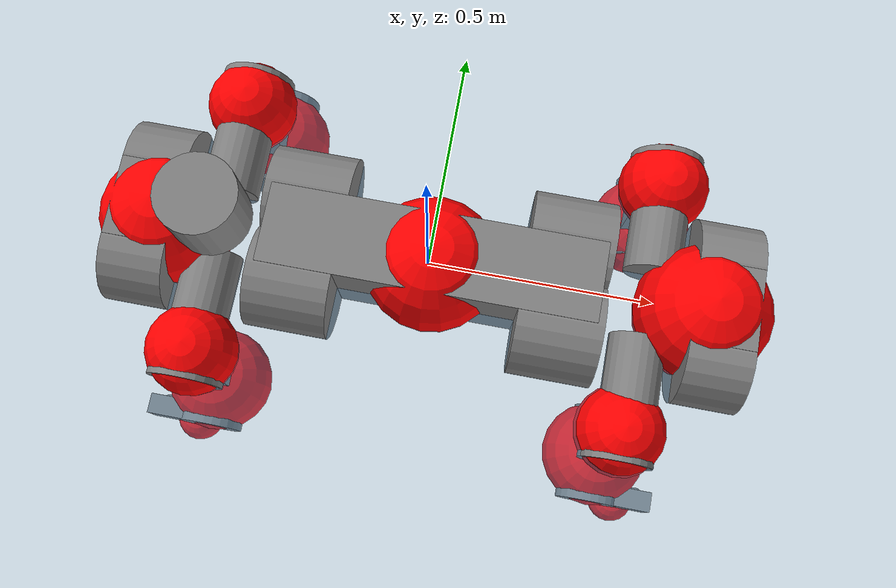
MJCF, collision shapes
<mujoco model="anymal_c">
  <compiler angle="radian" assetdir="assets" balanceinertia="true" inertiafromgeom="false"/>

  <option timestep="0.005" density="1.2" viscosity="2e-05"/>

  <size nkey="1"/>

  <visual>
    <quality shadowsize="8192"/>
    <map shadowclip="0.5"/>
  </visual>

  <default>
    <default class="/">
      <material specular="0" shininess="0.25"/>
      <geom contype="0" conaffinity="0" group="1" solref="-1000 -80"/>
      <site size="0.01 0.005 0.005" group="5"/>
      <general forcelimited="true" forcerange="-80 80" biastype="affine" gainprm="80" biasprm="0 -80 -2"/>
      <default class="anymal_c">
        <joint armature="0.01" damping="0.01" frictionloss="0.1"/>
        <default class="visual">
          <geom type="mesh" group="2"/>
          <default class="visual_zflip"/>
        </default>
        <default class="collision">
          <geom type="cylinder" group="3"/>
          <default class="foot">
            <geom size="0.03 0 0" type="sphere" condim="6" priority="1" friction="0.8 0.02 0.01" solimp="0.015 1 0.03"/>
          </default>
        </default>
      </default>
      <default class="reward_collision_sphere">
        <geom group="5" rgba="1 0 0 1"/>
      </default>
    </default>
  </default>

  <asset>
    <texture type="skybox" colorspace="auto" name="//unnamed_texture_0" builtin="gradient" rgb1="0.95 0.95 0.95" rgb2="0.95 0.95 0.95" width="100" height="600"/>
    <texture type="2d" colorspace="auto" name="texplane" builtin="checker" rgb1="0.345 0.575 0.748" rgb2="0.345 0.575 0.748" markrgb="1 1 1" width="512" height="512"/>
    <texture type="2d" colorspace="linear" name="base" file="base.png"/>
    <texture type="2d" colorspace="linear" name="top_shell" file="top_shell.png"/>
    <texture type="2d" colorspace="linear" name="bottom_shell" file="bottom_shell.png"/>
    <texture type="2d" colorspace="linear" name="remote" file="remote.png"/>
    <texture type="2d" colorspace="linear" name="hatch" file="hatch.png"/>
    <texture type="2d" colorspace="linear" name="handle" file="handle.png"/>
    <texture type="2d" colorspace="linear" name="face" file="face.png"/>
    <texture type="2d" colorspace="linear" name="battery" file="battery.png"/>
    <texture type="2d" colorspace="linear" name="lidar_cage" file="lidar_cage.png"/>
    <texture type="2d" colorspace="linear" name="depth_camera" file="depth_camera.png"/>
    <texture type="2d" colorspace="linear" name="wide_angle_camera" file="wide_angle_camera.png"/>
    <texture type="2d" colorspace="linear" name="lidar" file="lidar.png"/>
    <texture type="2d" colorspace="linear" name="drive" file="drive.png"/>
    <texture type="2d" colorspace="linear" name="hip_l" file="hip_l.png"/>
    <texture type="2d" colorspace="linear" name="shank_l" file="shank_l.png"/>
    <texture type="2d" colorspace="linear" name="foot" file="foot.png"/>
    <texture type="2d" colorspace="linear" name="thigh" file="thigh.png"/>
    <texture type="2d" colorspace="linear" name="shank_r" file="shank_r.png"/>
    <texture type="2d" colorspace="linear" name="hip_r" file="hip_r.png"/>
    <material name="MatPlane" class="/" texture="texplane" texuniform="true" texrepeat="2 2" specular="0.9" shininess="0.5"/>
    <material name="black_plastic" class="/" rgba="0.007 0.007 0.007 1"/>
    <material name="green" class="/" rgba="0.052 0.178 0.033 1"/>
    <material name="red" class="/" rgba="0.178 0.006 0.005 1"/>
    <material name="yellow" class="/" rgba="0.178 0.119 0.006 1"/>
    <material name="lwl" class="/" rgba="0.8 0.8 0.8 1"/>
    <material name="base" class="/" texture="base"/>
    <material name="top_shell" class="/" texture="top_shell"/>
    <material name="bottom_shell" class="/" texture="bottom_shell"/>
    <material name="hip_l" class="/" texture="hip_l"/>
    <material name="thigh" class="/" texture="thigh"/>
    <material name="shank_l" class="/" texture="shank_l"/>
    <material name="foot" class="/" texture="foot"/>
    <material name="hip_r" class="/" texture="hip_r"/>
    <material name="shank" class="/" texture="shank_r"/>
    <material name="hatch" class="/" texture="hatch"/>
    <material name="remote" class="/" texture="remote"/>
    <material name="handle" class="/" texture="handle"/>
    <material name="face" class="/" texture="face"/>
    <material name="depth_camera" class="/" texture="depth_camera"/>
    <material name="wide_angle_camera" class="/" texture="wide_angle_camera"/>
    <material name="battery" class="/" texture="battery"/>
    <material name="lidar_cage" class="/" texture="lidar_cage"/>
    <material name="lidar" class="/" texture="lidar"/>
    <material name="drive" class="/" texture="drive"/>
    <mesh name="base_0" class="/" file="base_0.obj"/>
    <mesh name="base_1" class="/" file="base_1.obj"/>
    <mesh name="base_2" class="/" file="base_2.obj"/>
    <mesh name="base_3" class="/" file="base_3.obj"/>
    <mesh name="base_4" class="/" file="base_4.obj"/>
    <mesh name="base_5" class="/" file="base_5.obj"/>
    <mesh name="top_shell" class="/" file="top_shell.obj"/>
    <mesh name="bottom_shell" class="/" file="bottom_shell.obj"/>
    <mesh name="remote" class="/" file="remote.obj"/>
    <mesh name="handle" class="/" file="handle.obj"/>
    <mesh name="face" class="/" file="face.obj"/>
    <mesh name="wide_angle_camera" class="/" file="wide_angle_camera.obj"/>
    <mesh name="depth_camera" class="/" file="depth_camera.obj"/>
    <mesh name="battery" class="/" file="battery.obj"/>
    <mesh name="lidar_cage" class="/" file="lidar_cage.obj"/>
    <mesh name="lidar" class="/" file="lidar.obj"/>
    <mesh name="drive" class="/" file="drive.obj"/>
    <mesh name="hip_l" class="/" file="hip_l.obj"/>
    <mesh name="thigh" class="/" file="thigh.obj"/>
    <mesh name="shank_l" class="/" file="shank_l.obj"/>
    <mesh name="foot" class="/" file="foot.obj"/>
    <mesh name="hip_r" class="/" file="hip_r.obj"/>
    <mesh name="hatch" class="/" file="hatch.obj"/>
    <mesh name="shank_r" class="/" file="shank_r.obj"/>
  </asset>

  <worldbody>
    <geom name="floor" class="/" size="100 100 0.125" type="plane" group="0" material="MatPlane"/>
    <light name="toplight_shadow" class="/" pos="0 0 5" dir="0.0990148 0.0990148 -0.990148" type="directional" ambient="0.04 0.04 0.04" diffuse="0.55 0.55 0.55" specular="0.12 0.12 0.12"/>
    <light name="toplight_fill" class="/" pos="0 0 5" dir="0.0990148 0.0990148 -0.990148" type="directional" castshadow="false" ambient="0.04 0.04 0.04" diffuse="0.3 0.3 0.3" specular="0.08 0.08 0.08"/>
    <body name="trunk" childclass="anymal_c" pos="0.0103736 -0.00258757 0.00777722" quat="0.999989 0.00384757 -0.0011267 -0.00240601">
      <inertial pos="0.0112902 -0.0082739 0.0539452" quat="0.448727 0.512507 0.522854 0.512449" mass="33.5116" diaginertia="1.93381 2.50368 0.267666"/>
      <joint name="//unnamed_joint_0" type="free" armature="0" damping="0" frictionloss="0"/>
      <geom name="//unnamed_geom_1" class="visual" material="green" mesh="base_0"/>
      <geom name="//unnamed_geom_2" class="visual" material="yellow" mesh="base_1"/>
      <geom name="//unnamed_geom_3" class="visual" material="red" mesh="base_2"/>
      <geom name="//unnamed_geom_4" class="visual" material="black_plastic" mesh="base_3"/>
      <geom name="//unnamed_geom_5" class="visual" material="lwl" mesh="base_4"/>
      <geom name="//unnamed_geom_6" class="visual" material="base" mesh="base_5"/>
      <geom name="trunk_1" class="collision" size="0.364819 0.0880598 0.11322" type="box"/>
      <geom name="trunk_2" class="collision" size="0.11322 0.0912048" pos="0.28893 0.093326 0" quat="0.707107 0 0.707107 0"/>
      <geom name="trunk_3" class="collision" size="0.11322 0.0912048" pos="-0.28893 0.093326 0" quat="0.707107 0 0.707107 0"/>
      <geom name="trunk_4" class="collision" size="0.11322 0.0912048" pos="0.28893 -0.093326 0" quat="0.707107 0 0.707107 0"/>
      <geom name="trunk_5" class="collision" size="0.11322 0.0912048" pos="-0.28893 -0.093326 0" quat="0.707107 0 0.707107 0"/>
      <geom name="//unnamed_geom_12" class="visual" material="top_shell" mesh="top_shell"/>
      <geom name="//unnamed_geom_13" class="visual" material="bottom_shell" mesh="bottom_shell"/>
      <geom name="//unnamed_geom_14" class="visual" material="remote" mesh="remote"/>
      <geom name="//unnamed_geom_15" class="visual" material="handle" mesh="handle"/>
      <geom name="//unnamed_geom_16" class="visual" pos="0.550628 0 0" quat="1 0 0 0" material="face" mesh="face"/>
      <geom name="trunk_6" class="collision" size="0.0691898 0.0880598 0.11322" pos="0.623691 0 0" type="box"/>
      <geom name="//unnamed_geom_18" class="collision" size="0.11322 0.0691898" pos="0.623691 0.093326 0" quat="0.707107 0 0.707107 0"/>
      <geom name="//unnamed_geom_19" class="collision" size="0.11322 0.0691898" pos="0.623691 -0.093326 0" quat="0.707107 0 0.707107 0"/>
      <geom name="//unnamed_geom_20" class="visual" pos="0.613254 0 -0.0308384" quat="0.965926 0 0.258819 0" material="depth_camera" mesh="depth_camera"/>
      <geom name="//unnamed_geom_21" class="visual" pos="0.681477 0 0.0166518" material="wide_angle_camera" mesh="wide_angle_camera"/>
      <geom name="//unnamed_geom_22" class="visual_zflip" pos="-0.550628 0 0" quat="0 0 0 1" material="face" mesh="face"/>
      <geom name="trunk_7" class="collision" size="0.0691898 0.0880598 0.11322" pos="-0.623691 0 0" quat="0 0 0 1" type="box"/>
      <geom name="//unnamed_geom_24" class="collision" size="0.11322 0.0691898" pos="-0.623691 -0.093326 0" quat="0 -0.707107 0 0.707107"/>
      <geom name="//unnamed_geom_25" class="collision" size="0.11322 0.0691898" pos="-0.623691 0.093326 0" quat="0 -0.707107 0 0.707107"/>
      <geom name="//unnamed_geom_26" class="visual" pos="-0.613254 0 -0.0308384" quat="0 -0.258819 0 0.965926" material="depth_camera" mesh="depth_camera"/>
      <geom name="//unnamed_geom_27" class="visual_zflip" pos="-0.681477 0 0.0166518" quat="0 0 0 1" material="wide_angle_camera" mesh="wide_angle_camera"/>
      <geom name="//unnamed_geom_28" class="visual" material="battery" mesh="battery"/>
      <geom name="//unnamed_geom_29" class="visual" pos="0 0.101993 0.0339558" quat="0.683013 -0.183013 0.183013 0.683013" material="depth_camera" mesh="depth_camera"/>
      <geom name="//unnamed_geom_30" class="visual" pos="0 -0.101993 0.0339558" quat="0.683013 0.183013 0.183013 -0.683013" material="depth_camera" mesh="depth_camera"/>
      <geom name="//unnamed_geom_31" class="visual" pos="-0.483543 0 0.0817575" quat="1 0 0 0" material="lidar_cage" mesh="lidar_cage"/>
      <geom name="trunk_8" class="collision" size="0.0880598 0.0754798" pos="-0.483543 0 0.148498"/>
      <geom name="//unnamed_geom_33" class="visual" pos="-0.483543 1.89111e-06 0.158176" quat="0.707107 0 0 -0.707107" material="lidar" mesh="lidar"/>
      <geom name="//unnamed_geom_34" class="visual" pos="0.398392 0.138577 3.81023e-09" quat="0.258819 0.965926 0 0" material="drive" mesh="drive"/>
      <geom name="//unnamed_geom_35" class="visual" pos="0.398392 -0.138577 -3.81023e-09" quat="0.258819 -0.965926 0 0" material="drive" mesh="drive"/>
      <geom name="//unnamed_geom_36" class="visual" pos="-0.398392 0.138577 -3.81023e-09" quat="0 0 0.965926 -0.258819" material="drive" mesh="drive"/>
      <geom name="//unnamed_geom_37" class="visual" pos="-0.398392 -0.138577 3.81023e-09" quat="0 0 -0.965926 -0.258819" material="drive" mesh="drive"/>
      <geom name="//unnamed_geom_38" class="visual" pos="0.154096 0 0.0812014" quat="1 0 0 0" material="hatch" mesh="hatch"/>
      <geom name="//unnamed_geom_39" class="reward_collision_sphere" size="0.15096"/>
      <geom name="//unnamed_geom_40" class="reward_collision_sphere" size="0.15096" pos="0.597787 0 0"/>
      <geom name="//unnamed_geom_41" class="reward_collision_sphere" size="0.15096" pos="-0.597787 0 0"/>
      <site name="imu" pos="0.288588 0.0892832 0.0809728" size="0.01258"/>
      <camera name="track" pos="0 -2.66646 0" quat="0.707107 0.707107 0 0" mode="trackcom"/>
      <camera name="ego_camera" pos="0.597787 0 -0.0444939" quat="-0.5 -0.5 0.5 0.5"/>
      <body name="LF_HIP" pos="0.398141 0.138912 0.00577488" quat="0.265423 0.964126 -0.00288298 -0.00164654">
        <inertial pos="0.0832181 -0.0212946 -0.00464885" quat="-0.123846 0.741781 -0.152791 0.641154" mass="4.54756" diaginertia="0.0201952 0.017325 0.00417561"/>
        <joint name="LF_HAA" pos="0 0 0" axis="0.999134 -0.0021216 0.0415539" range="-0.990458 0.457088" armature="0.0052234" damping="0.0055656" frictionloss="0.143075"/>
        <geom name="//unnamed_geom_42" class="visual" pos="0 0.000224138 -3.68145e-05" quat="0.258819 -0.965926 0 0" material="hip_l" mesh="hip_l"/>
        <geom name="//unnamed_geom_43" class="visual" pos="0.0795721 -0.0964034 -0.0540248" quat="0.183013 -0.683013 0.683013 0.183013" material="drive" mesh="drive"/>
        <geom name="//unnamed_geom_44" class="collision" size="0.0628999 0.0880598" pos="0.0795721 -0.0159451 -0.00768076" quat="-0.353553 -0.612372 0.612372 -0.353553"/>
        <body name="LF_THIGH" pos="0.0797392 -0.0930504 -0.0427031" quat="0.183042 -0.68282 0.683225 0.182908">
          <inertial pos="0.0416427 0.0137197 -0.257617" quat="0.992333 0.0161533 -0.092205 0.0807026" mass="6.28841" diaginertia="0.1191 0.137531 0.0067529"/>
          <joint name="LF_HFE" pos="0 0 0" axis="0.99987 0.01246 -0.0102651" range="-3.12979 2.83976" armature="0.0180082" damping="0.0855928" frictionloss="0.123488"/>
          <geom name="//unnamed_geom_45" class="visual" pos="-9.57703e-05 -1.50912e-07 0" quat="0.707107 0 0 -0.707107" material="thigh" mesh="thigh"/>
          <geom name="//unnamed_geom_46" class="collision" size="0.0817698 0.0503199" pos="0.0531366 0 0" quat="0.5 0.5 -0.5 -0.5"/>
          <geom name="//unnamed_geom_47" class="collision" size="0.0471749 0.0377399 0.177773" pos="0.0398525 0 -0.15719" quat="0.707107 0 0 -0.707107" type="box"/>
          <geom name="//unnamed_geom_48" class="visual" pos="0.13324 0 -0.317019" quat="1 0 0 0" material="drive" mesh="drive"/>
          <geom name="//unnamed_geom_49" class="collision" size="0.0628999 0.0880598" pos="0.040251 0 -0.317019" quat="0.707107 0 0.707107 0"/>
          <geom name="//unnamed_geom_50" class="reward_collision_sphere" size="0.10064" pos="0.0332104 0 0"/>
          <body name="LF_SHANK" pos="0.117457 -0.0144503 -0.327072" quat="1 -0.00040196 2.97243e-05 0.000342401">
            <inertial pos="0.0122552 -0.0732808 -0.0996311" quat="0.993195 -0.112721 0.00091441 -0.0292712" mass="0.973635" diaginertia="0.0367993 0.0409065 0.00193398"/>
            <joint name="LF_KFE" pos="0 0 0" axis="0.9999 0.00392289 -0.0136025" stiffness="0.0749808" range="-3.33577 3.39534" armature="0.0136303" damping="0.0247038" frictionloss="0.14002"/>
            <geom name="//unnamed_geom_51" class="visual" pos="-3.12286e-05 -0.000166512 0" quat="0.707107 0 0 -0.707107" material="shank_l" mesh="shank_l"/>
            <geom name="LF_kfe_act" class="collision" size="0.0754798 0.0251599" pos="0.0265683 0 0" quat="0.5 0.5 -0.5 -0.5"/>
            <geom name="//unnamed_geom_53" class="collision" size="0.0723336 0.0424574 0.0239019" pos="0.0265683 -0.0766593 0" quat="0.5 0.5 -0.5 -0.5" type="box"/>
            <geom name="//unnamed_geom_54" class="visual" pos="0.0173358 -0.117311 -0.37594" quat="0.382683 0 0 -0.92388" material="foot" mesh="foot"/>
            <geom name="LF_calf" class="collision" size="0.0220149 0.177695" pos="0.0173358 -0.117257 -0.18797" quat="0.707107 0 0 -0.707107"/>
            <geom name="LF_foot" class="foot" size="0.0578394" pos="0.0173358 -0.117257 -0.350912" quat="0.707107 0 0 -0.707107"/>
            <geom name="//unnamed_geom_57" class="reward_collision_sphere" size="0.1258" pos="-0.0664208 0 0"/>
            <geom name="//unnamed_geom_58" class="reward_collision_sphere" size="0.0628999" pos="0.0173358 -0.117257 -0.350912"/>
            <site name="LF_foot" class="foot" pos="0.0173358 -0.117257 -0.350912" quat="0.707107 0 0 -0.707107" size="0.01258"/>
          </body>
        </body>
      </body>
      <body name="RF_HIP" pos="0.390909 -0.146551 -0.0140573" quat="0.258905 -0.965903 -0.000211927 2.01925e-05">
        <inertial pos="0.079974 0.030321 -0.00941495" quat="0.136173 0.67783 0.0601018 0.719994" mass="4.49336" diaginertia="0.0219251 0.0156366 0.00442002"/>
        <joint name="RF_HAA" pos="0 0 0" axis="0.99999 0.00373329 -0.00238769" range="-0.703574 0.696" armature="0.0130957" damping="0.0105581" frictionloss="0.0906551"/>
        <geom name="//unnamed_geom_59" class="visual" pos="0 -0.000224137 -3.68144e-05" quat="0.258819 0.965926 0 0" material="hip_r" mesh="hip_r"/>
        <geom name="//unnamed_geom_60" class="visual" pos="0.0795721 0.0964034 -0.0540248" quat="0.183013 0.683013 0.683013 -0.183013" material="drive" mesh="drive"/>
        <geom name="//unnamed_geom_61" class="collision" size="0.0628999 0.0880598" pos="0.0795721 0.0159451 -0.00768076" quat="-0.353553 0.612372 0.612372 0.353553"/>
        <body name="RF_THIGH" pos="0.0722294 0.0969082 -0.0351459" quat="0.180805 0.682378 0.684028 -0.18378">
          <inertial pos="0.0400451 5.06173e-05 -0.258941" quat="0.995679 -0.0303015 -0.0867213 0.0135653" mass="4.71214" diaginertia="0.113486 0.104432 0.00591185"/>
          <joint name="RF_HFE" pos="0 0 0" axis="0.999907 0.0126866 0.00492874" stiffness="0.0154702" range="-2.85906 2.91027" armature="0.0192576" damping="0.0142432" frictionloss="0.10124"/>
          <geom name="//unnamed_geom_62" class="visual" pos="-9.57703e-05 -1.50912e-07 0" quat="0.707107 0 0 -0.707107" material="thigh" mesh="thigh"/>
          <geom name="//unnamed_geom_63" class="collision" size="0.0817698 0.0503199" pos="0.0531366 0 0" quat="0.5 0.5 0.5 0.5"/>
          <geom name="//unnamed_geom_64" class="collision" size="0.0471749 0.0377399 0.177773" pos="0.0398525 0 -0.15719" quat="0.707107 0 0 0.707107" type="box"/>
          <geom name="//unnamed_geom_65" class="visual" pos="0.13324 0 -0.317019" quat="1 0 0 0" material="drive" mesh="drive"/>
          <geom name="//unnamed_geom_66" class="collision" size="0.0628999 0.0880598" pos="0.040251 0 -0.317019" quat="0.707107 0 0.707107 0"/>
          <geom name="//unnamed_geom_67" class="reward_collision_sphere" size="0.10064" pos="0.0332104 0 0"/>
          <body name="RF_SHANK" pos="0.130976 -0.00144595 -0.317183" quat="1 0.000289488 -2.30868e-05 0.000115368">
            <inertial pos="0.0038876 0.0815656 -0.105699" quat="0.987371 0.152276 -0.00416849 0.0435146" mass="1.60239" diaginertia="0.0462908 0.0376818 0.00266838"/>
            <joint name="RF_KFE" pos="0 0 0" axis="0.999672 -0.0176151 0.0186104" range="-3.13463 3.3015" armature="0.00590686" damping="0.00891001" frictionloss="0.125885"/>
            <geom name="//unnamed_geom_68" class="visual" pos="-3.12284e-05 0.000166512 0" quat="0.707107 0 0 0.707107" material="shank" mesh="shank_r"/>
            <geom name="RF_kfe_act" class="collision" size="0.0754798 0.0251599" pos="0.0265683 0 0" quat="0.5 0.5 0.5 0.5"/>
            <geom name="//unnamed_geom_70" class="collision" size="0.0723336 0.0424574 0.0239019" pos="0.0265683 0.0766593 0" quat="0.5 0.5 0.5 0.5" type="box"/>
            <geom name="//unnamed_geom_71" class="visual" pos="0.0173358 0.117311 -0.37594" quat="0.382683 0 0 0.92388" material="foot" mesh="foot"/>
            <geom name="RF_calf" class="collision" size="0.0220149 0.177695" pos="0.0173358 0.117257 -0.18797" quat="0.707107 0 0 0.707107"/>
            <geom name="RF_foot" class="foot" size="0.029823" pos="0.0173358 0.117257 -0.350912" quat="0.707107 0 0 0.707107"/>
            <geom name="//unnamed_geom_74" class="reward_collision_sphere" size="0.1258" pos="-0.0664208 0 0"/>
            <geom name="//unnamed_geom_75" class="reward_collision_sphere" size="0.0628999" pos="0.0173358 0.117257 -0.350912"/>
            <site name="RF_foot" class="foot" pos="0.0173358 0.117257 -0.350912" quat="0.707107 0 0 0.707107" size="0.01258"/>
          </body>
        </body>
      </body>
      <body name="LH_HIP" pos="-0.395093 0.146098 0.013655" quat="0.00016675 -0.000340936 0.966017 -0.258477">
        <inertial pos="0.0758925 0.0217569 0.00418572" quat="0.132865 0.671595 0.123907 0.718299" mass="4.73146" diaginertia="0.0209829 0.0239066 0.00565592"/>
        <joint name="LH_HAA" pos="0 0 0" axis="0.999989 0.0046113 -0.00109698" range="-0.795059 0.453916" armature="0.0120787" damping="0.0531472" frictionloss="0.0422591"/>
        <geom name="//unnamed_geom_76" class="visual" pos="0 -0.000224137 -3.68144e-05" quat="-0.258819 -0.965926 0 0" material="hip_r" mesh="hip_r"/>
        <geom name="//unnamed_geom_77" class="visual" pos="0.0795721 0.0964034 -0.0540248" quat="0.183013 0.683013 0.683013 -0.183013" material="drive" mesh="drive"/>
        <geom name="//unnamed_geom_78" class="collision" size="0.0628999 0.0880598" pos="0.0795721 0.0159451 -0.00768076" quat="-0.353553 0.612372 0.612372 0.353553"/>
        <body name="LH_THIGH" pos="0.0784093 0.101099 -0.049012" quat="0.183087 0.682938 0.683105 -0.182871">
          <inertial pos="0.0539009 -0.00292295 -0.257729" quat="0.992977 0.0443273 -0.0980882 0.0490873" mass="5.83179" diaginertia="0.134893 0.115123 0.00763359"/>
          <joint name="LH_HFE" pos="0 0 0" axis="0.997914 -0.0644017 -0.00444043" stiffness="0.027014" range="-2.87568 3.20866" armature="0.00871098" damping="0" frictionloss="0.124443"/>
          <geom name="//unnamed_geom_79" class="visual" pos="-9.57703e-05 -1.50912e-07 0" quat="0.707107 0 0 -0.707107" material="thigh" mesh="thigh"/>
          <geom name="//unnamed_geom_80" class="collision" size="0.0817698 0.0503199" pos="0.0531366 0 0" quat="0.5 0.5 -0.5 -0.5"/>
          <geom name="//unnamed_geom_81" class="collision" size="0.0471749 0.0377399 0.177773" pos="0.0398525 0 -0.15719" quat="0.707107 0 0 -0.707107" type="box"/>
          <geom name="//unnamed_geom_82" class="visual" pos="0.13324 0 -0.317019" quat="1 0 0 0" material="drive" mesh="drive"/>
          <geom name="//unnamed_geom_83" class="collision" size="0.0628999 0.0880598" pos="0.040251 0 -0.317019" quat="0.707107 0 0.707107 0"/>
          <geom name="//unnamed_geom_84" class="reward_collision_sphere" size="0.10064" pos="0.0332104 0 0"/>
          <body name="LH_SHANK" pos="0.142225 -0.0068089 -0.306162" quat="1 -6.49403e-05 8.46699e-05 0.000343873">
            <inertial pos="-0.00126445 0.0906203 -0.0994564" quat="0.992345 0.0968469 -0.0361391 0.0675663" mass="1.34423" diaginertia="0.0419385 0.0361697 0.0020637"/>
            <joint name="LH_KFE" pos="0 0 0" axis="0.999208 0.0124936 0.0377789" stiffness="0.0784489" range="-3.25208 3.13097" armature="0.010358" damping="0.00033187" frictionloss="0.0708678"/>
            <geom name="//unnamed_geom_85" class="visual" pos="-3.12284e-05 0.000166512 0" quat="-0.707107 0 0 -0.707107" material="shank" mesh="shank_r"/>
            <geom name="LH_kfe_act" class="collision" size="0.0754798 0.0251599" pos="0.0265683 0 0" quat="0.5 0.5 -0.5 -0.5"/>
            <geom name="//unnamed_geom_87" class="collision" size="0.0723336 0.0424574 0.0239019" pos="0.0265683 0.0766593 0" quat="0.5 0.5 -0.5 -0.5" type="box"/>
            <geom name="//unnamed_geom_88" class="visual" pos="0.0173358 0.117311 -0.37594" quat="-0.382683 0 0 -0.92388" material="foot" mesh="foot"/>
            <geom name="LH_calf" class="collision" size="0.0220149 0.177695" pos="0.0173358 0.117257 -0.18797" quat="0.707107 0 0 -0.707107"/>
            <geom name="LH_foot" class="foot" size="0.0290504" pos="0.0173358 0.117257 -0.350912" quat="0.707107 0 0 -0.707107"/>
            <geom name="//unnamed_geom_91" class="reward_collision_sphere" size="0.1258" pos="-0.0664208 0 0"/>
            <geom name="//unnamed_geom_92" class="reward_collision_sphere" size="0.0628999" pos="0.0173358 0.117257 -0.350912"/>
            <site name="LH_foot" class="foot" pos="0.0173358 0.117257 -0.350912" quat="0.707107 0 0 -0.707107" size="0.01258"/>
          </body>
        </body>
      </body>
      <body name="RH_HIP" pos="-0.399411 -0.133613 -0.00238195" quat="0.00189837 -0.00152334 -0.9664 -0.257031">
        <inertial pos="0.0752356 -0.0334698 0.00111354" quat="-0.128715 0.709694 -0.134897 0.679389" mass="6.00311" diaginertia="0.0298643 0.0256552 0.00673162"/>
        <joint name="RH_HAA" pos="0 0 0" axis="0.999641 -0.00804058 -0.0255773" stiffness="0.00756307" range="-0.84169 0.72439" armature="0.0174044" damping="0.0683417" frictionloss="0.0887808"/>
        <geom name="//unnamed_geom_93" class="visual" pos="0 0.000224138 -3.68145e-05" quat="-0.258819 0.965926 0 0" material="hip_l" mesh="hip_l"/>
        <geom name="//unnamed_geom_94" class="visual" pos="0.0795721 -0.0964034 -0.0540248" quat="-0.183013 0.683013 -0.683013 -0.183013" material="drive" mesh="drive"/>
        <geom name="//unnamed_geom_95" class="collision" size="0.0628999 0.0880598" pos="0.0795721 -0.0159451 -0.00768076" quat="0.353553 0.612372 -0.612372 0.353553"/>
        <body name="RH_THIGH" pos="0.0761619 -0.0998018 -0.06061" quat="-0.183239 0.683403 -0.682627 -0.18277">
          <inertial pos="0.0501147 -0.0103708 -0.273924" quat="0.993227 -0.00566613 -0.0839921 0.0800887" mass="8.06507" diaginertia="0.130931 0.147849 0.00698733"/>
          <joint name="RH_HFE" pos="0 0 0" axis="0.999553 0.0299057 0.000534627" range="-2.85981 2.87651" armature="0.0119191" damping="0" frictionloss="0.20139"/>
          <geom name="//unnamed_geom_96" class="visual" pos="-9.57703e-05 -1.50912e-07 0" quat="0.707107 0 0 -0.707107" material="thigh" mesh="thigh"/>
          <geom name="//unnamed_geom_97" class="collision" size="0.0817698 0.0503199" pos="0.0531366 0 0" quat="0.5 0.5 0.5 0.5"/>
          <geom name="//unnamed_geom_98" class="collision" size="0.0471749 0.0377399 0.177773" pos="0.0398525 0 -0.15719" quat="0.707107 0 0 0.707107" type="box"/>
          <geom name="//unnamed_geom_99" class="visual" pos="0.13324 0 -0.317019" quat="1 0 0 0" material="drive" mesh="drive"/>
          <geom name="//unnamed_geom_100" class="collision" size="0.0628999 0.0880598" pos="0.040251 0 -0.317019" quat="0.707107 0 0.707107 0"/>
          <geom name="//unnamed_geom_101" class="reward_collision_sphere" size="0.10064" pos="0.0332104 0 0"/>
          <body name="RH_SHANK" pos="0.118946 -0.00187236 -0.31753" quat="0.999999 -9.59174e-05 0.000994074 0.00109308">
            <inertial pos="0.00154128 -0.0818392 -0.0909362" quat="0.993185 -0.115948 -0.00180427 -0.0116861" mass="1.49419" diaginertia="0.0494045 0.0445127 0.00211075"/>
            <joint name="RH_KFE" pos="0 0 0" axis="0.999141 -0.0223581 0.0348997" stiffness="0.0416516" range="-3.10038 2.9667" armature="0.0168025" damping="0.0761869" frictionloss="0.124409"/>
            <geom name="//unnamed_geom_102" class="visual" pos="-3.12286e-05 -0.000166512 0" quat="0.707107 0 0 -0.707107" material="shank_l" mesh="shank_l"/>
            <geom name="RH_kfe_act" class="collision" size="0.0754798 0.0251599" pos="0.0265683 0 0" quat="0.5 0.5 0.5 0.5"/>
            <geom name="//unnamed_geom_104" class="collision" size="0.0723336 0.0424574 0.0239019" pos="0.0265683 -0.0766593 0" quat="0.5 0.5 0.5 0.5" type="box"/>
            <geom name="//unnamed_geom_105" class="visual" pos="0.0173358 -0.117311 -0.37594" quat="0.382683 0 0 -0.92388" material="foot" mesh="foot"/>
            <geom name="RH_calf" class="collision" size="0.0220149 0.177695" pos="0.0173358 -0.117257 -0.18797" quat="0.707107 0 0 0.707107"/>
            <geom name="RH_foot" class="foot" size="0.0428146" pos="0.0173358 -0.117257 -0.350912" quat="0.707107 0 0 0.707107"/>
            <geom name="//unnamed_geom_108" class="reward_collision_sphere" size="0.1258" pos="-0.0664208 0 0"/>
            <geom name="//unnamed_geom_109" class="reward_collision_sphere" size="0.0628999" pos="0.0173358 -0.117257 -0.350912"/>
            <site name="RH_foot" class="foot" pos="0.0173358 -0.117257 -0.350912" quat="0.707107 0 0 0.707107" size="0.01258"/>
          </body>
        </body>
      </body>
    </body>
  </worldbody>

  <contact>
    <pair class="/" geom1="floor" geom2="LF_foot" name="//unnamed_contact_0"/>
    <pair class="/" geom1="floor" geom2="RF_foot" name="//unnamed_contact_1"/>
    <pair class="/" geom1="floor" geom2="LH_foot" name="//unnamed_contact_2"/>
    <pair class="/" geom1="floor" geom2="RH_foot" name="//unnamed_contact_3"/>
  </contact>

  <actuator>
    <general name="LF_HAA" class="/" joint="LF_HAA" forcerange="-88.9565 88.9565" gainprm="114.506" biasprm="0 -114.506 -1.70428"/>
    <general name="LF_HFE" class="/" joint="LF_HFE" forcerange="-54.1946 54.1946" gainprm="114.506" biasprm="0 -114.506 -1.70428"/>
    <general name="LF_KFE" class="/" joint="LF_KFE" forcerange="-151.334 151.334" gainprm="114.506" biasprm="0 -114.506 -1.70428"/>
    <general name="RF_HAA" class="/" joint="RF_HAA" forcerange="-95.0546 95.0546" gainprm="114.506" biasprm="0 -114.506 -1.70428"/>
    <general name="RF_HFE" class="/" joint="RF_HFE" forcerange="-66.7271 66.7271" gainprm="114.506" biasprm="0 -114.506 -1.70428"/>
    <general name="RF_KFE" class="/" joint="RF_KFE" forcerange="-40.2046 40.2046" gainprm="114.506" biasprm="0 -114.506 -1.70428"/>
    <general name="LH_HAA" class="/" joint="LH_HAA" forcerange="-49.3169 49.3169" gainprm="114.506" biasprm="0 -114.506 -1.70428"/>
    <general name="LH_HFE" class="/" joint="LH_HFE" forcerange="-72.5573 72.5573" gainprm="114.506" biasprm="0 -114.506 -1.70428"/>
    <general name="LH_KFE" class="/" joint="LH_KFE" forcerange="-102.942 102.942" gainprm="114.506" biasprm="0 -114.506 -1.70428"/>
    <general name="RH_HAA" class="/" joint="RH_HAA" forcerange="-102.795 102.795" gainprm="114.506" biasprm="0 -114.506 -1.70428"/>
    <general name="RH_HFE" class="/" joint="RH_HFE" forcerange="-158.23 158.23" gainprm="114.506" biasprm="0 -114.506 -1.70428"/>
    <general name="RH_KFE" class="/" joint="RH_KFE" forcerange="-144.574 144.574" gainprm="114.506" biasprm="0 -114.506 -1.70428"/>
  </actuator>

  <sensor>
    <gyro site="imu" name="imu_angular_velocity"/>
    <velocimeter site="imu" name="imu_linear_velocity"/>
    <framelinvel objtype="site" objname="LF_foot" name="LF_foot_global_linear_velocity"/>
    <framelinvel objtype="site" objname="RF_foot" name="RF_foot_global_linear_velocity"/>
    <framelinvel objtype="site" objname="LH_foot" name="LH_foot_global_linear_velocity"/>
    <framelinvel objtype="site" objname="RH_foot" name="RH_foot_global_linear_velocity"/>
  </sensor>

  <keyframe>
    <key name="home" qpos="0 0 0.55 1 0 0 0 0 0.4 -0.8 0 -0.4 0.8 0 -0.4 0.8 0 0.4 -0.8"/>
  </keyframe>
</mujoco>
